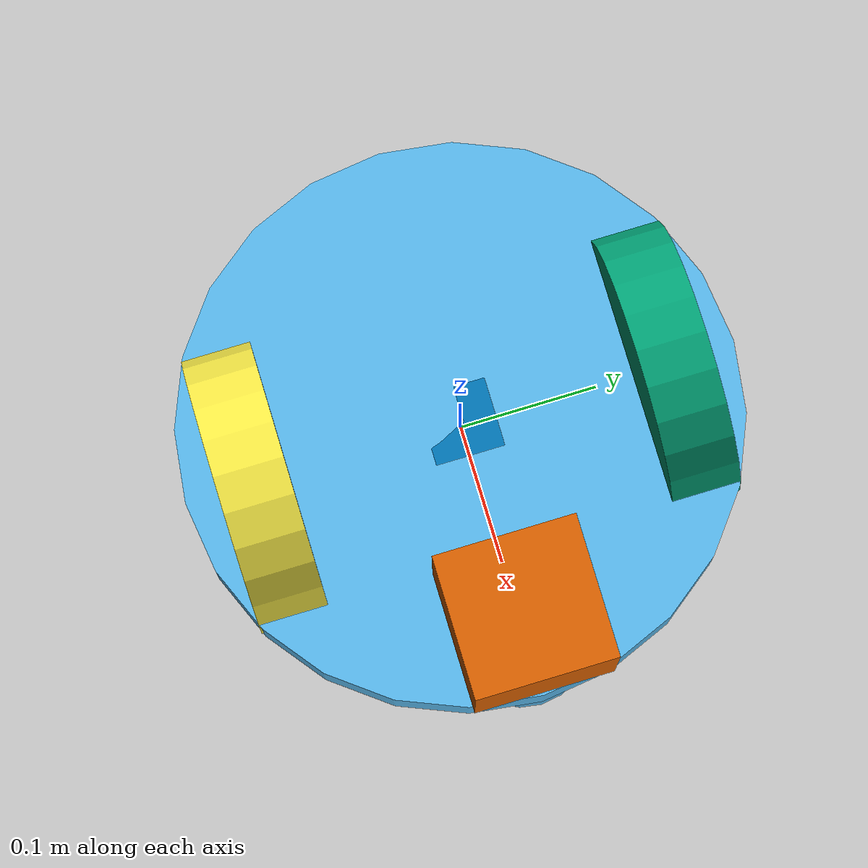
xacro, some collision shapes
<?xml version='1.0'?>

<robot name="my_robot" xmlns:xacro="http://www.ros.org/wiki/xacro">

<xacro:include filename="$(find my_robot)/urdf/my_robot.gazebo" />
  <link name="robot_footprint"></link>

  <joint name="robot_footprint_joint" type="fixed">
    <origin xyz="0 0 0" rpy="0 0 0" />
    <parent link="robot_footprint"/>
    <child link="chassis" />
  </joint>

  <link name='chassis'>
    <pose>0 0 0.1 0 0 0</pose>

    <inertial>
      <mass value="15.0"/>
      <origin xyz="0.0 0 0" rpy=" 0 0 0"/>
      <inertia
          ixx="0.1" ixy="0" ixz="0"
          iyy="0.1" iyz="0"
          izz="0.1"
      />
    </inertial>

    <collision name='collision'>
      <origin xyz="0 0 0" rpy=" 0 0 0"/>
      <geometry>
        <cylinder length="0.05" radius="0.21"/>
      </geometry>
    </collision>

    <visual name='chassis_visual'>
      <origin xyz="0 0 0" rpy=" 0 0 0"/>
      <geometry>
        <cylinder length="0.05" radius="0.2"/>
      </geometry>
    </visual>

    <collision name='back_caster_collision'>
      <origin xyz="-0.15 0 -0.05" rpy=" 0 0 0"/>
      <geometry>
        <sphere radius="0.0499"/>
      </geometry>
    </collision>

    <visual name='back_caster_visual'>
      <origin xyz="-0.15 0 -0.05" rpy=" 0 0 0"/>
      <geometry>
        <sphere radius="0.05"/>
      </geometry>
    </visual>

    <collision name='front_caster_collision'>
      <origin xyz="0.15 0 -0.05" rpy=" 0 0 0"/>
      <geometry>
        <sphere radius="0.0499"/>
      </geometry>
    </collision>

    <visual name='front_caster_visual'>
      <origin xyz="0.15 0 -0.05" rpy=" 0 0 0"/>
      <geometry>
        <sphere radius="0.05"/>
      </geometry>
    </visual>

  </link>

 <joint name="left_wheel_hinge" type="continuous" >
    <origin xyz="0 0.15 0" rpy="0 0 0"/>
    <child link="left_wheel"/>
    <parent link="chassis"/>
    <axis xyz="0 1 0" rpy="0 0 0"/>
    <limit effort="10000" velocity="1000"/>
    <dynamics damping="1.0" friction="1.0"/>
 </joint>

 <joint name="right_wheel_hinge" type="continuous" >
    <origin xyz="0 -0.15 0" rpy="0 0 0"/>
    <child link="right_wheel"/>
    <parent link="chassis"/>
    <axis xyz="0 1 0" rpy="0 0 0"/>
    <limit effort="10000" velocity="1000"/>
    <dynamics damping="1.0" friction="1.0"/>
  </joint>

  <link name='left_wheel'>

    <inertial>
      <mass value="5"/>
      <origin xyz="0.0 0 0" rpy="0 1.5707 1.5707"/>
      <inertia
          ixx="0.1" ixy="0" ixz="0"
          iyy="0.1" iyz="0"
          izz="0.1"
      />
    </inertial>

    <collision name='left_wheel'>
      <origin xyz="0 0 0" rpy=" 0 1.5707 1.5707"/>
      <geometry>
        <cylinder length="0.05" radius="0.1"/>
      </geometry>
    </collision>

    <visual name='left_wheel'>
      <origin xyz="0 0 0" rpy=" 0 1.5707 1.5707"/>
      <geometry>
        <cylinder length="0.05" radius="0.1"/>
      </geometry>
    </visual>
  </link>

  <link name='right_wheel'>

    <inertial>
      <mass value="5"/>
      <origin xyz="0.0 0 0" rpy="0 1.5707 1.5707"/>
      <inertia
          ixx="0.1" ixy="0" ixz="0"
          iyy="0.1" iyz="0"
          izz="0.1"
      />
    </inertial>
    <collision name='right_wheel'>
      <origin xyz="0 0 0" rpy=" 0 1.5707 1.5707"/>
      <geometry>
        <cylinder length="0.05" radius="0.1"/>
      </geometry>
    </collision>

    <visual name='right_wheel'>
      <origin xyz="0 0 0" rpy=" 0 1.5707 1.5707"/>
      <geometry>
        <cylinder length="0.05" radius="0.1"/>
      </geometry>
    </visual>
  </link>

<link name='camera_link'>
    <pose>0 0 0 0 0 0</pose>

    <inertial>
      <mass value="0.1"/>
      <origin xyz="0.0 0 0" rpy=" 0 0 0"/>
      <inertia
          ixx="1e-6" ixy="0" ixz="0"
          iyy="1e-6" iyz="0"
          izz="1e-6"
      />
    </inertial>

    <collision name='camera_link_visual'>
      <origin xyz="0 0 0" rpy=" 0 0 0"/>
      <geometry>
        <box size=".05 .05 .05"/>
      </geometry>
    </collision>

    <visual name='camera_link_visual'>
      <origin xyz="0 0 0" rpy=" 0 0 0"/>
      <geometry>
        <box size=".05 .05 .05"/>
      </geometry>
    </visual>
  </link>

<joint type="fixed" name="hokuyo_joint">
    <origin xyz="0.15 0 0.1" rpy="0 0 0"/>
    <child link="hokuyo"/>
    <parent link="chassis"/>
    <axis xyz="0 1 0" rpy="0 0 0"/>
    <limit effort="10000" velocity="1000"/>
    <dynamics damping="1.0" friction="1.0"/>
  </joint>
<link name='hokuyo'>
    <pose>0 0 0.1 0 0 0</pose>

    <inertial>
      <mass value="1e-5"/>
      <origin xyz="0.0 0 0" rpy=" 0 0 0"/>
      <inertia
          ixx="1e-6" ixy="0" ixz="0"
          iyy="1e-6" iyz="0"
          izz="1e-6"
      />
    </inertial>

    <collision name='hokuyo'>
      <origin xyz="0 0 0" rpy=" 0 0 0"/>
      <geometry>
        <box size="0.1 0.1 0.1"/>
      </geometry>
    </collision>

    <visual name='hokuyo'>
      <origin xyz="0 0 0" rpy=" 0 0 0"/>
      <geometry>
        <mesh filename="package://my_robot/meshes/hokuyo.dae"/>
      </geometry>
    </visual>
  </link>

  <joint name="camera_optical_joint"  type="fixed" >
    <origin xyz="0 0 0" rpy="-1.5707 0 -1.5707"/>
    <parent link="camera_link"/>
    <child link="camera_link_optical"/>
  </joint>

<joint name="camera_joint" type="fixed" >
    <origin xyz="0 0 0" rpy="0 0 0"/>
    <parent link="chassis"/>
    <child link="camera_link"/>
  </joint>

  <link name="camera_link_optical">
  </link>

</robot>
